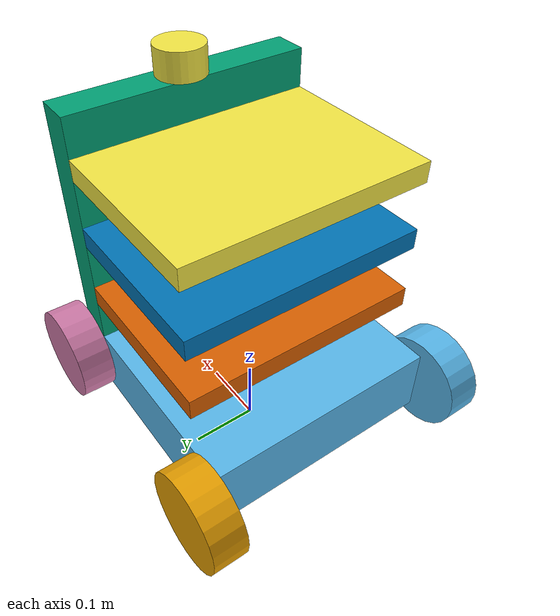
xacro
<?xml version="1.0"?>
<robot xmlns:xacro="http://ros.org/wiki/xacro" name="service_robot">

    <xacro:property name="width" value="0.4" />
    <xacro:property name="length" value="0.4" />
    <xacro:property name="height" value="0.5" />
    <xacro:property name="wheel_radius" value="0.05" />
    <xacro:property name="wheel_width" value="0.06" />
    <xacro:property name="wheel_separation" value="0.3" />

    <!-- LiDAR mounting position -->
    <xacro:property name="lidar_x_offset" value="-0.15" />
    <xacro:property name="lidar_y_offset" value="0.0" />
    <xacro:property name="lidar_z_offset" value="0.37" />

    <!-- ROS 2 Control Configuration for Real Hardware -->
     <ros2_control name="ServiceRobotSystem" type="system">
        <hardware>
            <plugin>robot_control/ACSARInterface</plugin>
            <param name="serial_port">/dev/ttyUSB0</param>
            <param name="baud_rate">9600</param>
            <param name="wheel_diameter">0.1</param>
            <param name="wheel_radius">${wheel_radius}</param>
            <param name="wheel_separation">${wheel_separation}</param>
            <param name="lidar_x_offset">${lidar_x_offset}</param>
            <param name="lidar_y_offset">${lidar_y_offset}</param>
            <param name="lidar_z_offset">${lidar_z_offset}</param>
            <param name="odom_frame">odom</param>
            <param name="base_frame">base_link</param>
            <param name="lidar_frame">lidar_link</param>
        </hardware>

        <!-- Front Left Wheel -->
        <joint name="wheel_front_left_joint">
            <command_interface name="velocity">
                <param name="min">-0.5</param>
                <param name="max">0.5</param>
            </command_interface>
            <state_interface name="position"/>
            <state_interface name="velocity"/>
        </joint>

        <!-- Front Right Wheel -->
        <joint name="wheel_front_right_joint">
            <command_interface name="velocity">
                <param name="min">-0.5</param>
                <param name="max">0.5</param>
            </command_interface>
            <state_interface name="position"/>
            <state_interface name="velocity"/>
        </joint>

        <!-- Back Left Wheel -->
        <joint name="wheel_back_left_joint">
            <command_interface name="velocity">
                <param name="min">-0.5</param>
                <param name="max">0.5</param>
            </command_interface>
            <state_interface name="position"/>
            <state_interface name="velocity"/>
        </joint>

         <!-- Back Right Wheel -->
        <joint name="wheel_back_right_joint">
            <command_interface name="velocity">
                <param name="min">-0.5</param>
                <param name="max">0.5</param>
            </command_interface>
            <state_interface name="position"/>
            <state_interface name="velocity"/>
        </joint>
    </ros2_control>

      <!-- Robot Footprint -->

    <link name="base_footprint"/>

    <link name="base_link">
        <visual>
            <geometry>
                <box size="0.35 0.35 0.1"/>
            </geometry>
        </visual>
        <collision>
            <geometry>
                <box size="0.35 0.35 0.1"/>
            </geometry>
        </collision>
        <inertial>
            <mass value="3.0"/>
            <inertia ixx="0.0306" ixy="0" ixz="0" iyy="0.0306" iyz="0" izz="0.0613"/>
        </inertial>
    </link>

    <!-- Body with Rectangular Shape -->
   <link name="body">
        <visual>
            <geometry>
                <box size="0.05 0.35 0.35"/>
            </geometry>
            <origin xyz="-0.15 0 0.175" rpy="0 0 0"/>
        </visual>
        <collision>
            <geometry>
                <box size="0.05 0.35 0.35"/>
            </geometry>
            <origin xyz="-0.15 0 0.175" rpy="0 0 0"/>
        </collision>
        <inertial>
            <mass value="4.2"/>
            <inertia ixx="0.08" ixy="0" ixz="0" iyy="0.08" iyz="0" izz="0.05"/>
        </inertial>
    </link>

    <!-- New Rectangular Plates -->
    <link name="front_plate_top">
        <visual>
            <geometry>
                <box size="0.25 0.35 0.03"/>
            </geometry>
            <origin xyz="0 0 0" rpy="0 0 0"/>
        </visual>
        <collision>
            <geometry>
                <box size="0.25 0.35 0.03"/>
            </geometry>
        </collision>
        <inertial>
            <mass value="0.2"/>
            <inertia ixx="0.001" ixy="0" ixz="0" iyy="0.001" iyz="0" izz="0.001"/>
        </inertial>
    </link>

    <link name="front_plate_middle">
        <visual>
            <geometry>
                <box size="0.25 0.35 0.03"/>
            </geometry>
            <origin xyz="0 0 0" rpy="0 0 0"/>
        </visual>
        <collision>
            <geometry>
                <box size="0.25 0.35 0.03"/>
            </geometry>
        </collision>
        <inertial>
            <mass value="0.5"/>
            <inertia ixx="0.001" ixy="0" ixz="0" iyy="0.001" iyz="0" izz="0.001"/>
        </inertial>
    </link>

    <link name="front_plate_bottom">
        <visual>
            <geometry>
                <box size="0.25 0.35 0.03"/>
            </geometry>
            <origin xyz="0 0 0" rpy="0 0 0"/>
        </visual>
        <collision>
            <geometry>
                <box size="0.25 0.35 0.03"/>
            </geometry>
        </collision>
        <inertial>
            <mass value="0.5"/>
            <inertia ixx="0.001" ixy="0" ixz="0" iyy="0.001" iyz="0" izz="0.001"/>
        </inertial>
    </link>

    <!-- Wheels with enhanced properties -->
    <!-- Front Left Wheel -->
    <link name="wheel_front_left">
        <visual>
            <geometry>
                <cylinder length="0.05" radius="0.07"/>
            </geometry>
        </visual>
        <collision>
            <geometry>
                <cylinder length="0.05" radius="0.07"/>
            </geometry>
        </collision>
        <inertial>
            <mass value="0.375"/>
            <inertia ixx="0.00049" ixy="0" ixz="0" iyy="0.00049" iyz="0" izz="0.00092"/>
        </inertial>
    </link>

    <!-- Front Right Wheel -->
    <link name="wheel_front_right">
        <visual>
            <geometry>
                <cylinder length="0.05" radius="0.07"/>
            </geometry>
        </visual>
        <collision>
            <geometry>
                <cylinder length="0.05" radius="0.07"/>
            </geometry>
        </collision>
        <inertial>
            <mass value="0.375"/>
            <inertia ixx="0.00049" ixy="0" ixz="0" iyy="0.00049" iyz="0" izz="0.00092"/>
        </inertial>
    </link>

    <!-- Back Left Wheel -->
    <link name="wheel_back_left">
       <visual>
            <geometry>
                <cylinder length="0.05" radius="0.07"/>
            </geometry>
        </visual>
        <collision>
            <geometry>
                <cylinder length="0.05" radius="0.07"/>
            </geometry>
        </collision>
        <inertial>
            <mass value="0.375"/>
            <inertia ixx="0.00049" ixy="0" ixz="0" iyy="0.00049" iyz="0" izz="0.00092"/>
        </inertial>
    </link>

    <!-- Back Right Wheel -->
    <link name="wheel_back_right">
       <visual>
            <geometry>
                <cylinder length="0.05" radius="0.07"/>
            </geometry>
        </visual>
        <collision>
            <geometry>
                <cylinder length="0.05" radius="0.07"/>
            </geometry>
        </collision>
        <inertial>
            <mass value="0.375"/>
            <inertia ixx="0.00049" ixy="0" ixz="0" iyy="0.00049" iyz="0" izz="0.00092"/>
        </inertial>
    </link>

    <!-- Sensors -->
    <!-- Raspberry Pi Camera Module 2 -->
    <link name="camera_link">
        <visual>
            <geometry>
                <box size="0.025 0.024 0.009"/>
            </geometry>
        </visual>
        <inertial>
            <mass value="0.003"/>
            <inertia ixx="0.0000001" ixy="0" ixz="0" iyy="0.0000001" iyz="0" izz="0.0000001"/>
        </inertial>
    </link>

    <!-- LIDAR -->
    <link name="lidar_link">
        <visual>
            <geometry>
                <cylinder length="0.04" radius="0.035"/>
            </geometry>
        </visual>
        <inertial>
            <mass value="0.1"/>
            <inertia ixx="0.00002" ixy="0" ixz="0" iyy="0.00002" iyz="0" izz="0.00006"/>
        </inertial>
    </link>

    <!-- IMU -->
    <link name="imu_link">
         <visual>
            <geometry>
                <box size="0.02 0.02 0.02"/>
            </geometry>
        </visual>
        <inertial>
            <mass value="0.01"/>
            <inertia ixx="0.000001" ixy="0" ixz="0" iyy="0.000001" iyz="0" izz="0.000001"/>
        </inertial>
    </link>

    <!-- Joints -->

    <joint name="base_joint" type="fixed">
        <parent link="base_footprint"/>
        <child link="base_link"/>
        <origin xyz="0.0 0.0 0.12" rpy="0 0 0"/>
    </joint>

    <!-- Body to Base -->
    <joint name="body_joint" type="fixed">
        <parent link="base_link"/>
        <child link="body"/>
        <origin xyz="0 0 0.05" rpy="0 0 3.14"/>  <!-- Keeping the same z-offset -->
    </joint>

     <!-- Joints for new front plates -->
    <joint name="front_plate_top_joint" type="fixed">
        <parent link="body"/>
        <child link="front_plate_top"/>
        <origin xyz="0.0 0 0.28" rpy="0 0 0"/>
    </joint>

    <joint name="front_plate_middle_joint" type="fixed">
        <parent link="body"/>
        <child link="front_plate_middle"/>
        <origin xyz="0.0 0 0.18" rpy="0 0 0"/>
    </joint>

    <joint name="front_plate_bottom_joint" type="fixed">
        <parent link="body"/>
        <child link="front_plate_bottom"/>
        <origin xyz="0.0 0 0.08" rpy="0 0 0"/>
    </joint>

     <!-- Wheels -->
    <joint name="wheel_front_left_joint" type="continuous">
        <parent link="base_link"/>
        <child link="wheel_front_left"/>
        <origin xyz="0.175 0.2 0" rpy="-1.5708 0 0"/>
        <axis xyz="0 0 1"/>
        <dynamics damping="0.01" friction="0.01"/>
        <limit effort="0.32" velocity="0.44"/>  <!-- Added torque limit of 0.32 N.m -->
    </joint>

    <joint name="wheel_front_right_joint" type="continuous">
        <parent link="base_link"/>
        <child link="wheel_front_right"/>
        <origin xyz="0.175 -0.2 0" rpy="-1.5708 0 0"/>
        <axis xyz="0 0 1"/>
        <dynamics damping="0.01" friction="0.01"/>
        <limit effort="0.32" velocity="0.44"/>  <!-- Added torque limit of 0.32 N.m -->
    </joint>

    <joint name="wheel_back_left_joint" type="continuous">
        <parent link="base_link"/>
        <child link="wheel_back_left"/>
        <origin xyz="-0.175 0.2 0" rpy="-1.5708 0 0"/>
        <axis xyz="0 0 1"/>
        <dynamics damping="0.01" friction="0.01"/>
        <limit effort="0.32" velocity="0.44"/>  <!-- Added torque limit of 0.32 N.m -->
    </joint>

    <joint name="wheel_back_right_joint" type="continuous">
        <parent link="base_link"/>
        <child link="wheel_back_right"/>
        <origin xyz="-0.175 -0.2 0" rpy="-1.5708 0 0"/>
        <axis xyz="0 0 1"/>
        <dynamics damping="0.01" friction="0.01"/>
        <limit effort="0.32" velocity="0.44"/>  <!-- Added torque limit of 0.32 N.m -->
    </joint>

    <!-- Sensors Joints -->
    <!-- Updated Sensor Placements -->
    <joint name="lidar_joint" type="fixed">
        <parent link="body"/>
        <child link="lidar_link"/>
        <origin xyz="-0.15 0.0 0.37" rpy="0 0 0"/>  <!-- Moved to top of body -->
    </joint>

    <joint name="camera_joint" type="fixed">
        <parent link="body"/>
        <child link="camera_link"/>
        <origin xyz="-0.1875 0 0.30" rpy="0 0 3.14"/>  <!-- Repositioned at back surface -->
    </joint>

    <joint name="imu_joint" type="fixed">
        <parent link="base_link"/>
        <child link="imu_link"/>
        <origin xyz="0 0 0.05" rpy="0 0 0"/>  <!-- Kept same relative position -->
    </joint>

</robot>
